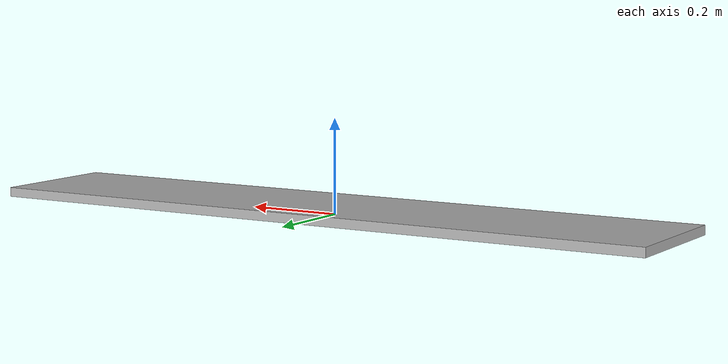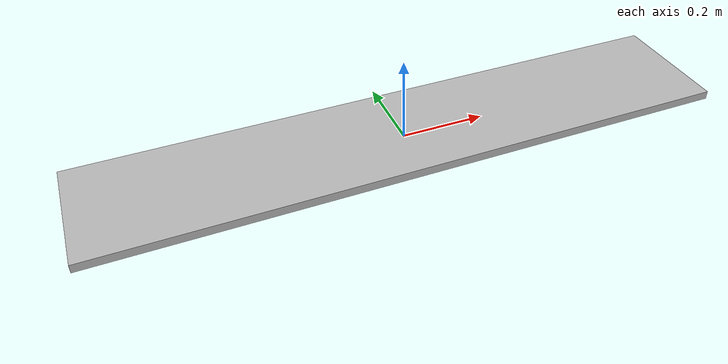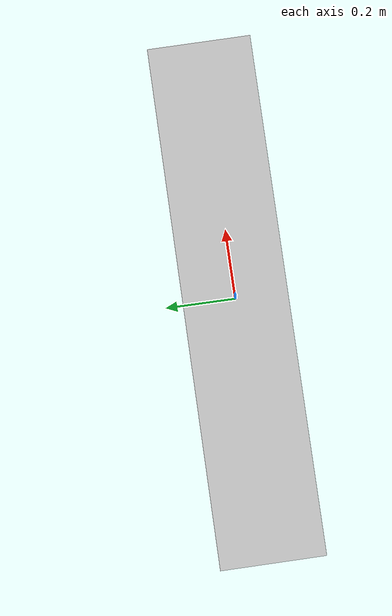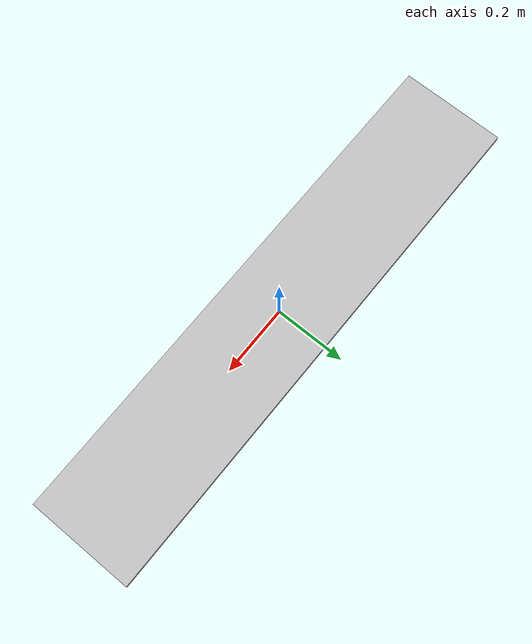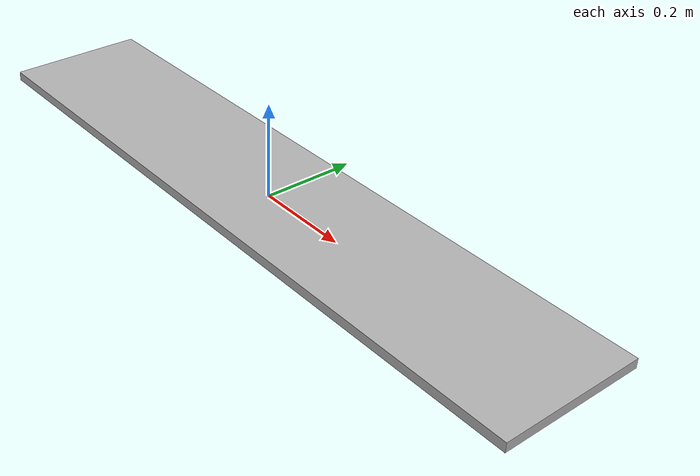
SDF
<sdf version="1.9">
  <model name="sidewalk_segment">
    <static>true</static>
    <link name="segment_link">
      <collision name="segment_collision">
        <pose>0 0 0.01 0 0 0</pose>
        <geometry>
          <box>
            <size>1.5 0.3 0.02</size>
          </box>
        </geometry>
      </collision>
      <visual name="segment_visual">
        <pose>0 0 0.01 0 0 0</pose>
        <geometry>
          <box>
            <size>1.5 0.3 0.02</size>
          </box>
        </geometry>
        <material>
          <ambient>0.70 0.70 0.70 1</ambient>
          <diffuse>0.70 0.70 0.70 1</diffuse>
          <specular>0.02 0.02 0.02 1</specular>
        </material>
      </visual>
    </link>
  </model>
</sdf>
